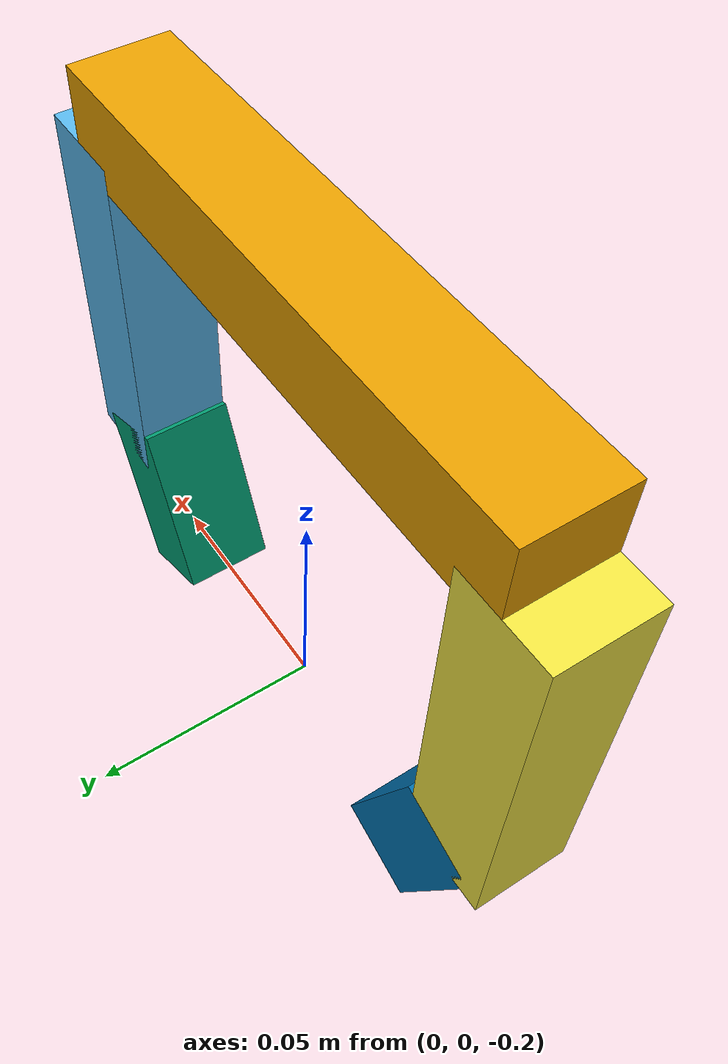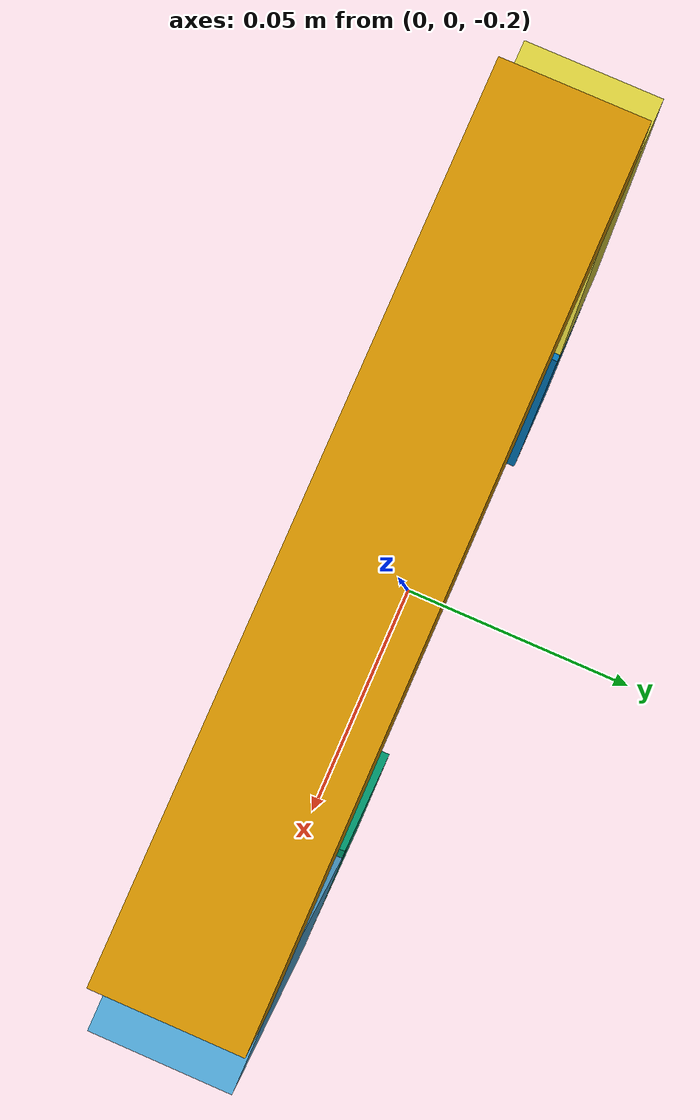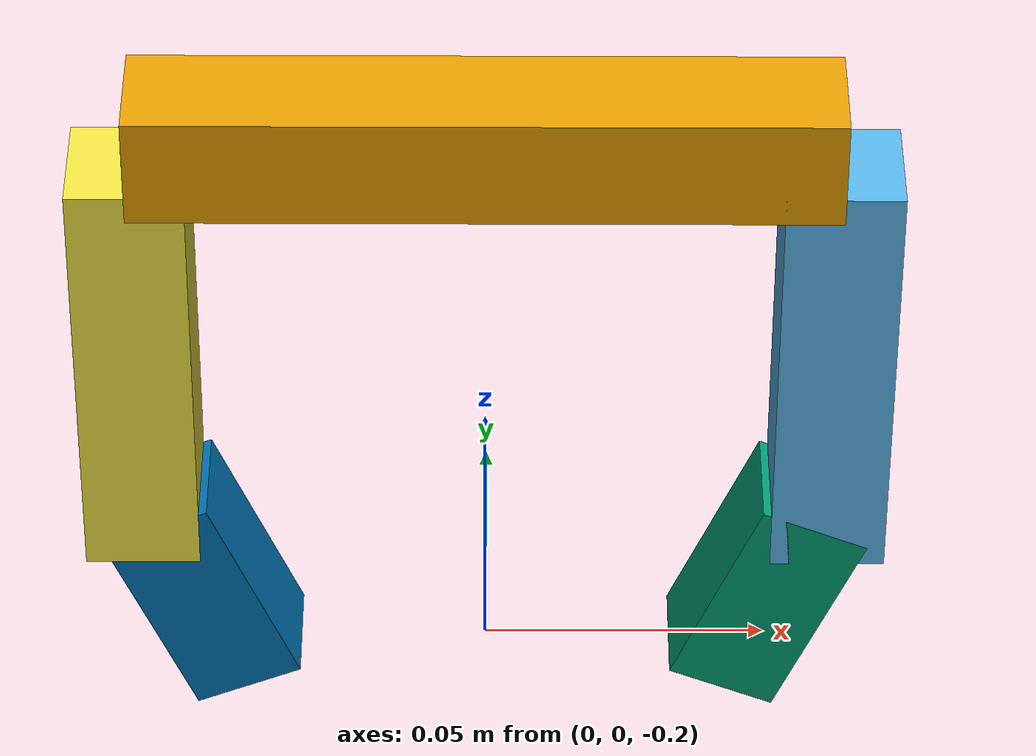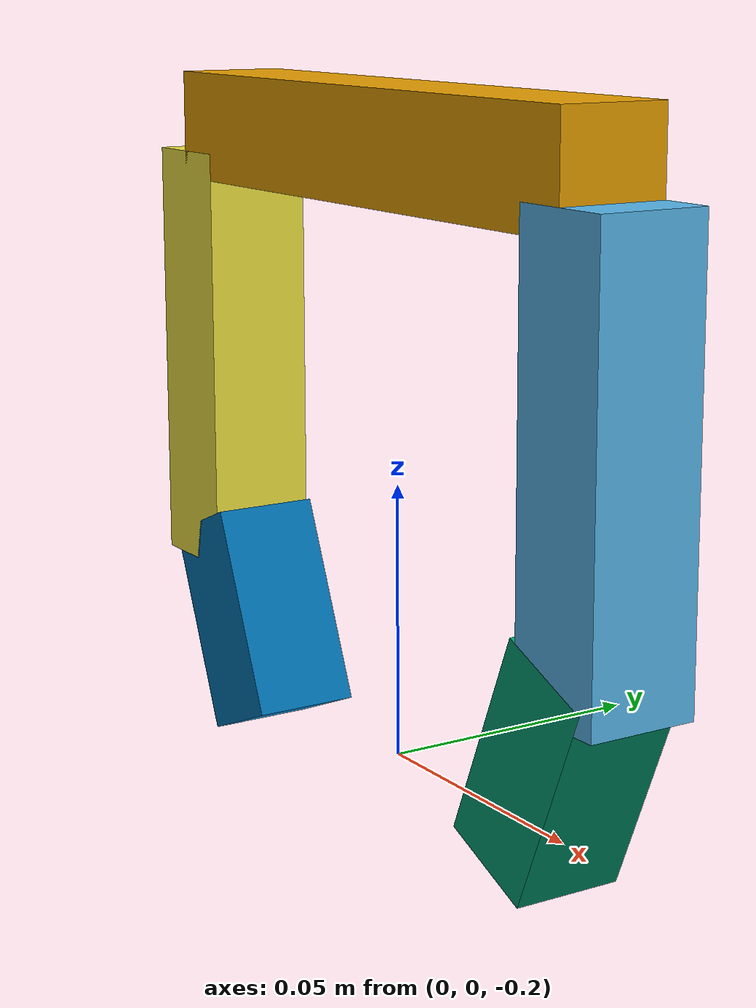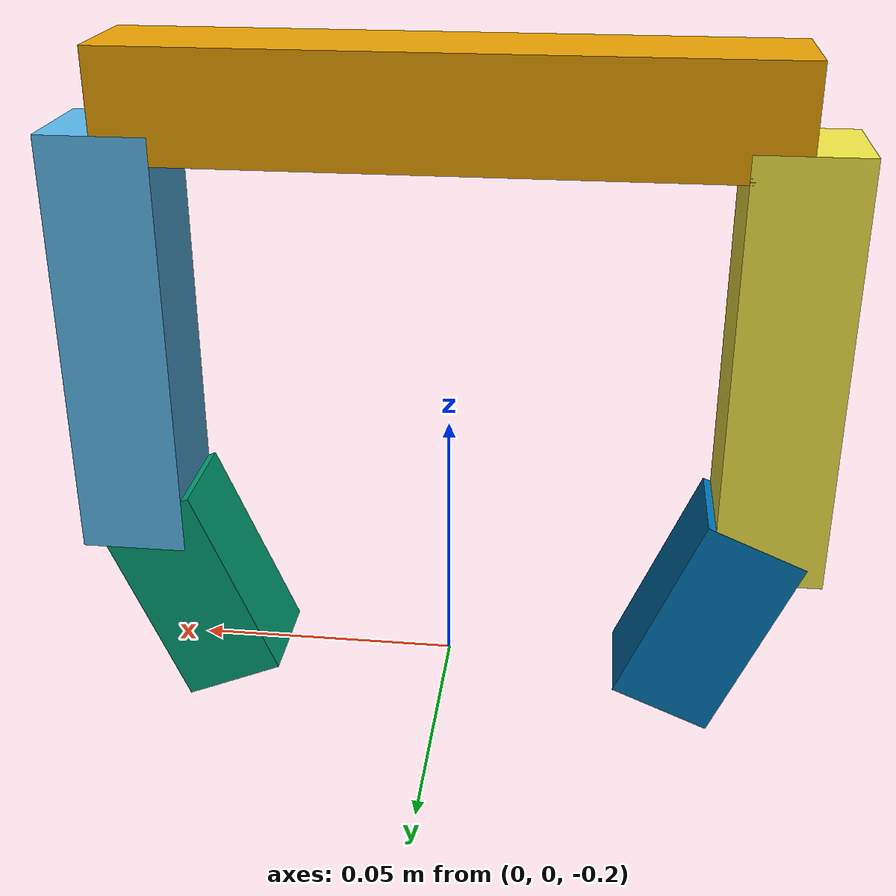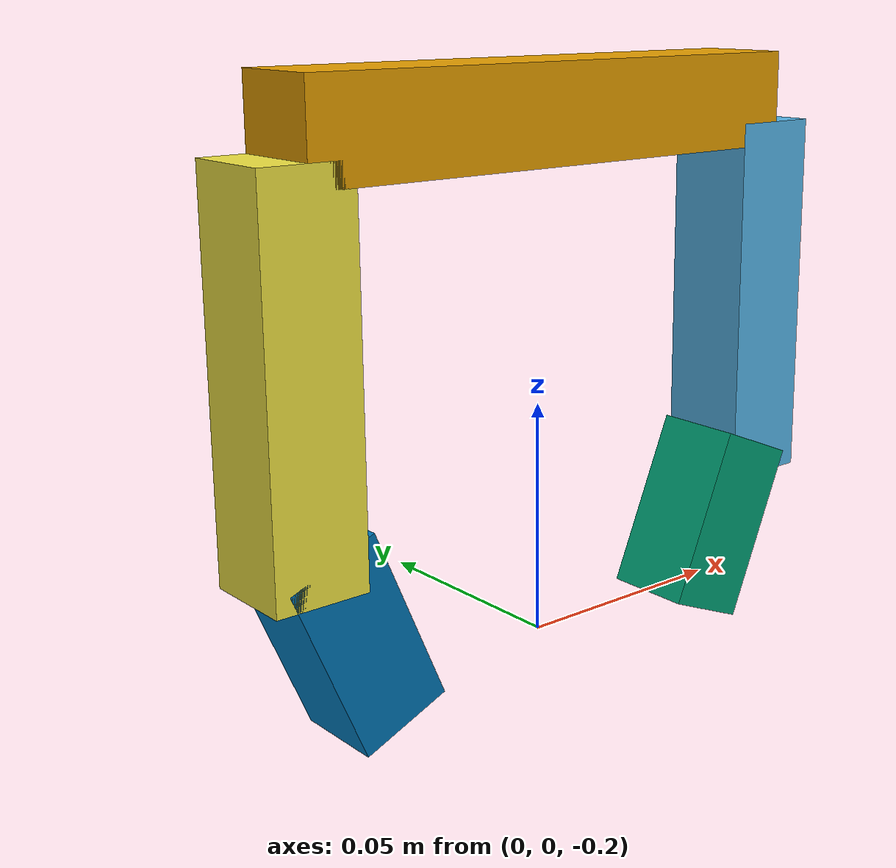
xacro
<?xml version="1.0"?>
<robot xmlns:xacro="http://ros.org/wiki/xacro">
    <!-- propiedades del gripper -->
    <xacro:property name="basex" value="0" />
    <xacro:property name="basez" value="-0.09" />
    <xacro:property name="basey1" value="-0.0020" />
    <xacro:property name="basey2" value="-0.0050" />
    <xacro:property name="palm_length" value="0.12" />
    <xacro:property name="defwidth" value="0.020" />
    <xacro:property name="finger_length" value="0.08" />
    <xacro:property name="tip_length" value="0.04" />
    <xacro:property name="tip_rot" value="0.4" />
    <!-- descripcion de los links del gripper-->
    <link name="gripper_palm">
        <collision>
            <origin xyz="${basex} 0 ${basez}" rpy="0 0 0"/>
            <geometry>
                <box size="${defwidth} ${palm_length} ${defwidth}"/>
            </geometry>
        </collision>

        <visual>
            <origin xyz="${basex} 0 ${basez}" rpy="0 0 0"/>
            <geometry>
                <box size="${palm_length} ${defwidth} ${defwidth}"/>
            </geometry>
        </visual>

        <inertial>
            <origin xyz="0 0 0" rpy="0 0 0"/>
            <mass value="${palm_length}"/>
            <inertia
                ixx="0.0" ixy="0.0" ixz="0.0"
                iyy="${(0.015 * palm_length * palm_length)/12}" iyz="0.0"
                izz="${(0.015 * palm_length * palm_length)/12}"/>
        </inertial>
    </link>

    <link name="gripper_left_finger">
        <collision>
            <origin xyz="0 0 ${0.5 * basez}" rpy="0 0 0"/>
            <geometry>
                <box size="${defwidth} ${defwidth} ${finger_length}"/>
            </geometry>
        </collision>

        <visual>
            <origin xyz="0 0 ${0.5 * basez}" rpy="0 0 0"/>
            <geometry>
                <box size="${defwidth} ${defwidth} ${finger_length}"/>
            </geometry>
        </visual>

        <inertial>
            <origin xyz="0 0 0" rpy="0 0 0"/>
            <mass value="${finger_length}"/>
            <inertia
                ixx="${(0.015 * finger_length * finger_length)/12}" ixy="0.0" ixz="0.0"
                iyy="${(0.015 * finger_length * finger_length)/12}" iyz="0.0"
                izz="0.0"/>
        </inertial>
    </link>

    <link name="gripper_left_tip">
         <collision>
            <origin xyz="${-0.5 * defwidth} 0 ${- finger_length - tip_rot * tip_length}" rpy="0 ${tip_rot} 0"/>
            <geometry>
                <box size="${defwidth} ${defwidth} ${tip_length}"/>
            </geometry>
        </collision>

        <visual>
            <origin xyz="${-0.5 * defwidth} 0 ${- finger_length - tip_rot * tip_length}" rpy="0 ${tip_rot} 0"/>
            <geometry>
                <box size="${defwidth} ${defwidth} ${tip_length}"/>
            </geometry>
        </visual>

        <inertial>
            <origin xyz="0 0 0" rpy="0 ${tip_rot} 0"/>
            <mass value="${tip_length}"/>
            <inertia
                ixx="${(0.015 * tip_length * tip_length)/12}" ixy="0.0" ixz="0.0"
                iyy="${(0.015 * tip_length * tip_length)/12}" iyz="0.0"
                izz="0.0"/>
        </inertial>
    </link>

    <link name="gripper_right_finger">
        <collision>
            <origin xyz="${-basex} 0 ${0.5 * basez}" rpy="0 0 0"/>
            <geometry>
                <box size="${defwidth} ${defwidth} ${finger_length}"/>
            </geometry>
        </collision>

        <visual>
            <origin xyz="${-basex} 0 ${0.5 * basez}" rpy="0 0 0"/>
            <geometry>
                <box size="${defwidth} ${defwidth} ${finger_length}"/>
            </geometry>
        </visual>

        <inertial>
            <origin xyz="0 0 0" rpy="0 0 0"/>
            <mass value="${finger_length}"/>
            <inertia
                ixx="${(0.015 * finger_length * finger_length)/12}" ixy="0.0" ixz="0.0"
                iyy="${(0.015 * finger_length * finger_length)/12}" iyz="0.0"
                izz="0.0"/>
        </inertial>
    </link>

    <link name="gripper_right_tip">
        <collision>
            <origin xyz="${0.5 * defwidth} 0 ${- finger_length - tip_rot * tip_length}" rpy="0 ${-tip_rot} 0"/>
            <geometry>
                <box size="${defwidth} ${defwidth} ${tip_length}"/>
            </geometry>
        </collision>

        <visual>
            <origin xyz="${0.5 * defwidth} 0 ${- finger_length - tip_rot * tip_length}" rpy="0 ${-tip_rot} 0"/>
            <geometry>
                <box size="${defwidth} ${defwidth} ${tip_length}"/>
            </geometry>
        </visual>

        <inertial>
            <origin xyz="0 0 0" rpy="0 ${-tip_rot} 0"/>
            <mass value="${tip_length}"/>
            <inertia
                ixx="${(0.015 * tip_length * tip_length)/12}" ixy="0.0" ixz="0.0"
                iyy="${(0.015 * tip_length * tip_length)/12}" iyz="0.0"
                izz="0.0"/>
        </inertial>
    </link>

    <!-- descripcion de los joints del gripper-->
     <joint name="left_joint" type="revolute">
        <parent link="gripper_palm"/>
        <child link="gripper_left_finger"/>
        <origin xyz="0.06 0 -0.09" rpy="0 0 0"/>
            <limit lower="-1" upper="0.5" effort="10" velocity="3"/>
            <axis xyz="0 1 0"/>
     </joint>

     <joint name="right_joint" type="revolute">
        <parent link="gripper_palm"/>
        <child link="gripper_right_finger"/>
        <origin xyz="-0.06 0 -0.09" rpy="0 0 0"/>
            <limit lower="-1" upper="0.5" effort="10" velocity="3"/>
            <axis xyz="0 -1 0"/>
     </joint>

     <joint name="left_tip_joint" type="fixed">
        <parent link="gripper_left_finger"/>
        <child link="gripper_left_tip"/>
     </joint>

     <joint name="right_tip_joint" type="fixed">
        <parent link="gripper_right_finger"/>
        <child link="gripper_right_tip"/>
     </joint>

   <gazebo>
    <plugin name="gazebo_ros_left_force" filename="libgazebo_ros_force.so">
      <bodyName>gripper_left_finger</bodyName>
      <topicName>/uav_left_force</topicName>
    </plugin>
  </gazebo>

  <gazebo>
    <plugin name="gazebo_ros_right_force" filename="libgazebo_ros_force.so">
      <bodyName>gripper_right_finger</bodyName>
      <topicName>/uav_right_force</topicName>
    </plugin>
  </gazebo>

    <gazebo>
        <gripper name="gripper_gazebo">
            <grasp_check>
                <attach_steps>5</attach_steps>
                <detach_steps>10</detach_steps>
                <min_contact_count>1</min_contact_count>
            </grasp_check>
            <gripper_link>gripper_left_tip</gripper_link>
            <gripper_link>gripper_right_tip</gripper_link>
            <palm_link>gripper_palm</palm_link>
        </gripper>
    </gazebo>

</robot>
